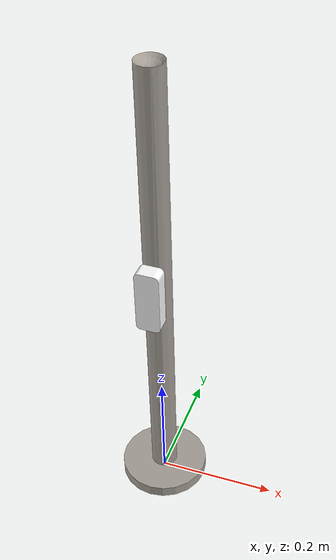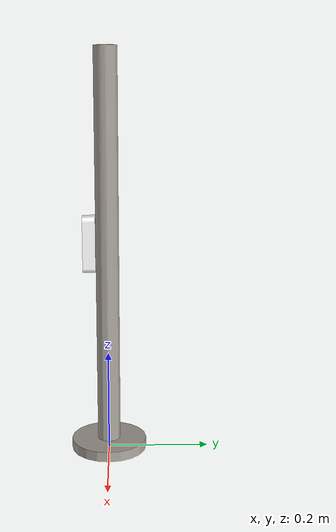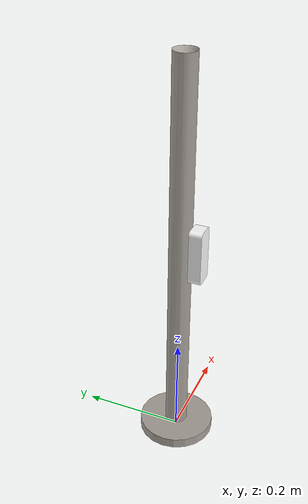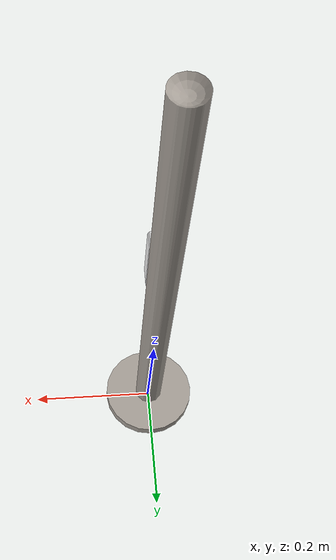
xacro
<?xml version="1.0" encoding="utf-8"?>

<robot name="task4_pinger" xmlns:xacro="http://www.ros.org/wiki/xacro">

  <link name="base_link">
    <inertial>
      <origin
        xyz="0 0 0.31877"
        rpy="0 0 0" />
      <mass
        value="12.525" />
      <inertia
        ixx="0.8346"
        ixy="0"
        ixz="0"
        iyy="0.01322"
        iyz="0"
        izz="0.3" />
    </inertial>
    <visual>
      <origin
        xyz="0 0 0"
        rpy="0 0 0" />
      <geometry>
        <mesh
          filename="package://uwv_env/meshes/sauvc_pool/task4_base.STL" />
      </geometry>
      <material
        name="">
        <color
          rgba="0.64706 0.61961 0.58824 1" />
      </material>
    </visual>
    <collision>
      <origin
        xyz="0 0 0"
        rpy="0 0 0" />
      <geometry>
        <mesh
          filename="package://uwv_env/meshes/sauvc_pool/task4_base.STL" />
      </geometry>
    </collision>
  </link>

  <link name="pinger">
    <inertial>
      <origin
        xyz="0 0 0"
        rpy="0 0 0" />
      <mass
        value="0.0" />
      <inertia
        ixx="0.0"
        ixy="0"
        ixz="0"
        iyy="0.0"
        iyz="0"
        izz="0.0" />
    </inertial>
    <visual>
      <origin
        xyz="0 0 0"
        rpy="0 0 0" />
      <geometry>
        <mesh
          filename="package://uwv_env/meshes/sauvc_pool/pinger.STL" />
      </geometry>
      <material
        name="">
        <color
          rgba="1 1 1 1" />
      </material>
    </visual>
    <collision>
      <origin
        xyz="0 0 0"
        rpy="0 0 0" />
      <geometry>
        <mesh
          filename="package://uwv_env/meshes/sauvc_pool/pinger.STL" />
      </geometry>
    </collision>
  </link>

  <joint
    name="pinger_link"
    type="fixed">
    <origin
      xyz="0 -0.0225 0.4245"
      rpy="1.5708 0 0" />
    <parent
      link="base_link" />
    <child
      link="pinger" />
    <axis
      xyz="0 0 0" />
  </joint>

	<gazebo reference="base_link">
		<material>
			Gazebo/Yellow
		</material>
	</gazebo>

	<gazebo reference="pinger">
		<material>
			Gazebo/Grey
		</material>
	</gazebo>

</robot>
